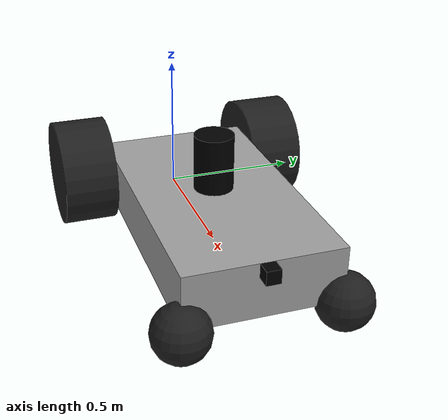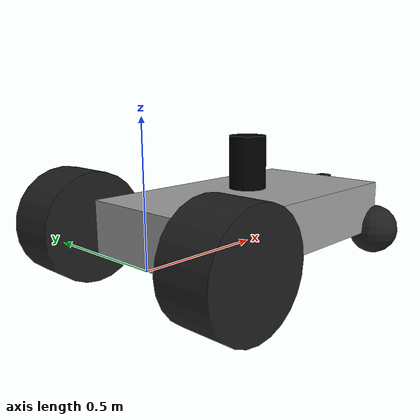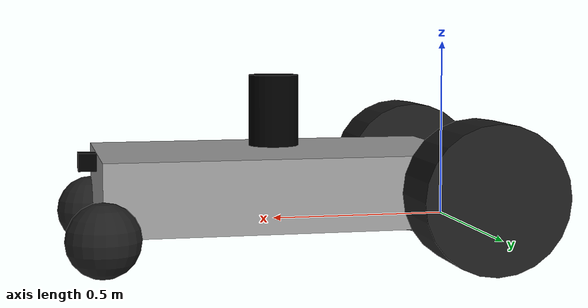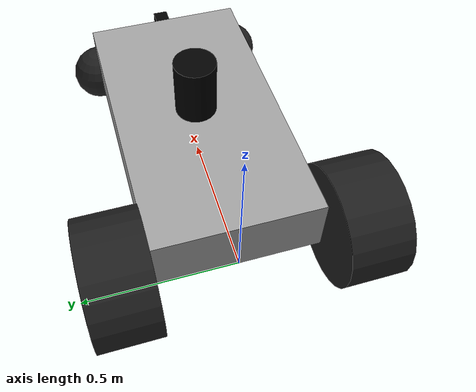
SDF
<sdf version='1.11'>
  <model name='robobase'>
    <link name='base_footprint'>
      <inertial>
        <pose>0.50017641129032253 0 0.1004620295698925 0 0 0</pose>
        <mass>297.60000000000008</mass>
        <inertia>
          <ixx>8.5122739709341424</ixx>
          <ixy>0</ixy>
          <ixz>-0.0039132434475792621</ixz>
          <iyy>25.802952209341399</iyy>
          <iyz>0</iyz>
          <izz>32.265528238407263</izz>
        </inertia>
      </inertial>
      <collision name='base_footprint_fixed_joint_lump__base_link_collision'>
        <pose>0.5 0 0.10000000000000001 0 0 0</pose>
        <geometry>
          <box>
            <size>1 0.55000000000000004 0.20000000000000001</size>
          </box>
        </geometry>
      </collision>
      <collision name='base_footprint_fixed_joint_lump__camera_link_collision_1'>
        <pose>1.0249999999999999 0 0.17499999999999999 0 0 0</pose>
        <geometry>
          <box>
            <size>0.050000000000000003 0.050000000000000003 0.050000000000000003</size>
          </box>
        </geometry>
        <surface>
          <contact>
            <ode/>
          </contact>
          <friction>
            <ode/>
          </friction>
        </surface>
      </collision>
      <collision name='base_footprint_fixed_joint_lump__lidar_link_collision_2'>
        <pose>0.5 0 0.31000000000000011 0 0 0</pose>
        <geometry>
          <cylinder>
            <length>0.20000000000000001</length>
            <radius>0.070000000000000007</radius>
          </cylinder>
        </geometry>
        <surface>
          <contact>
            <ode/>
          </contact>
          <friction>
            <ode/>
          </friction>
        </surface>
      </collision>
      <visual name='base_footprint_fixed_joint_lump__base_link_visual'>
        <pose>0.5 0 0.10000000000000001 0 0 0</pose>
        <geometry>
          <box>
            <size>1 0.55000000000000004 0.20000000000000001</size>
          </box>
        </geometry>
        <material>
          <diffuse>0.625 0.625 0.625 1</diffuse>
          <ambient>0.625 0.625 0.625 1</ambient>
        </material>
      </visual>
      <visual name='base_footprint_fixed_joint_lump__camera_link_visual_1'>
        <pose>1.0249999999999999 0 0.17499999999999999 0 0 0</pose>
        <geometry>
          <box>
            <size>0.050000000000000003 0.050000000000000003 0.050000000000000003</size>
          </box>
        </geometry>
        <material>
          <diffuse>0 0 0 1</diffuse>
          <ambient>0 0 0 1</ambient>
        </material>
      </visual>
      <visual name='base_footprint_fixed_joint_lump__lidar_link_visual_2'>
        <pose>0.5 0 0.31000000000000011 0 0 0</pose>
        <geometry>
          <cylinder>
            <length>0.20000000000000001</length>
            <radius>0.070000000000000007</radius>
          </cylinder>
        </geometry>
        <material>
          <diffuse>0 0 0 1</diffuse>
          <ambient>0 0 0 1</ambient>
        </material>
      </visual>
      <sensor name='camera_sensor' type='camera'>
        <camera>
          <horizontal_fov>1.0469999999999999</horizontal_fov>
          <image>
            <width>640</width>
            <height>480</height>
            <format>R8G8B8</format>
          </image>
          <clip>
            <near>0.10000000000000001</near>
            <far>100</far>
          </clip>
          <camera_info_topic>camera/camera_info</camera_info_topic>
        </camera>
        <always_on>true</always_on>
        <update_rate>30</update_rate>
        <visualize>true</visualize>
        <topic>camera/image_raw</topic>
        <pose>1.0249999999999999 0 0.17499999999999999 0 0 0</pose>
        <gz_frame_id>camera_link</gz_frame_id>
      </sensor>
      <sensor name='imu_sensor' type='imu'>
        <always_on>true</always_on>
        <update_rate>200</update_rate>
        <topic>imu</topic>
        <imu>
          <angular_velocity>
            <x>
              <noise type='gaussian'>
                <mean>0</mean>
                <stddev>0.00020000000000000001</stddev>
              </noise>
            </x>
            <y>
              <noise type='gaussian'>
                <mean>0</mean>
                <stddev>0.00020000000000000001</stddev>
              </noise>
            </y>
            <z>
              <noise type='gaussian'>
                <mean>0</mean>
                <stddev>0.00020000000000000001</stddev>
              </noise>
            </z>
          </angular_velocity>
          <linear_acceleration>
            <x>
              <noise type='gaussian'>
                <mean>0</mean>
                <stddev>0.017000000000000001</stddev>
              </noise>
            </x>
            <y>
              <noise type='gaussian'>
                <mean>0</mean>
                <stddev>0.017000000000000001</stddev>
              </noise>
            </y>
            <z>
              <noise type='gaussian'>
                <mean>0</mean>
                <stddev>0.017000000000000001</stddev>
              </noise>
            </z>
          </linear_acceleration>
        </imu>
        <pose>0.5 0 0 0 0 0</pose>
      </sensor>
      <sensor name='lidar_sensor' type='gpu_lidar'>
        <always_on>true</always_on>
        <visualize>true</visualize>
        <update_rate>10</update_rate>
        <topic>scan</topic>
        <lidar>
          <scan>
            <horizontal>
              <samples>360</samples>
              <resolution>1</resolution>
              <min_angle>0</min_angle>
              <max_angle>6.2800000000000002</max_angle>
            </horizontal>
          </scan>
          <range>
            <min>0.10000000000000001</min>
            <max>8</max>
            <resolution>0.014999999999999999</resolution>
          </range>
          <noise>
            <type>gaussian</type>
            <mean>0</mean>
            <stddev>0.01</stddev>
          </noise>
        </lidar>
        <pose>0.5 0 0.31 0 0 0</pose>
        <gz_frame_id>lidar_link</gz_frame_id>
      </sensor>
    </link>
    <joint name='lbwheel_joint' type='revolute'>
      <pose relative_to='base_footprint'>0 0.27500000000000002 0.10000000000000001 -1.5707963267948959 0 0</pose>
      <parent>base_footprint</parent>
      <child>lbwheel_link</child>
      <axis>
        <xyz>0 0 1</xyz>
        <limit>
          <effort>1000</effort>
          <velocity>1000</velocity>
          <lower>-inf</lower>
          <upper>inf</upper>
        </limit>
        <dynamics>
          <damping>1</damping>
          <friction>1</friction>
          <spring_reference>0</spring_reference>
          <spring_stiffness>0</spring_stiffness>
        </dynamics>
      </axis>
    </joint>
    <link name='lbwheel_link'>
      <pose relative_to='lbwheel_joint'>0 0 0 0 0 0</pose>
      <inertial>
        <pose>0 0 0.10000000000000001 0 0 0</pose>
        <mass>67.858401317539546</mass>
        <inertia>
          <ixx>0.90477868423386076</ixx>
          <ixy>0</ixy>
          <ixz>0</ixz>
          <iyy>0.90477868423386076</iyy>
          <iyz>0</iyz>
          <izz>1.357168026350791</izz>
        </inertia>
      </inertial>
      <collision name='lbwheel_link_collision'>
        <pose>0 0 0.10000000000000001 0 0 0</pose>
        <geometry>
          <cylinder>
            <length>0.20000000000000001</length>
            <radius>0.20000000000000001</radius>
          </cylinder>
        </geometry>
        <surface>
          <contact>
            <ode/>
          </contact>
          <friction>
            <ode>
              <mu>3</mu>
              <mu2>3</mu2>
            </ode>
          </friction>
        </surface>
      </collision>
      <visual name='lbwheel_link_visual'>
        <pose>0 0 0.10000000000000001 0 0 0</pose>
        <geometry>
          <cylinder>
            <length>0.20000000000000001</length>
            <radius>0.20000000000000001</radius>
          </cylinder>
        </geometry>
        <material>
          <script>
            <name>Gazebo/Black</name>
            <uri>file://media/materials/scripts/gazebo.material</uri>
          </script>
          <diffuse>0 0 0 1</diffuse>
          <ambient>0 0 0 1</ambient>
        </material>
      </visual>
    </link>
    <joint name='lfwheel_joint' type='revolute'>
      <pose relative_to='base_footprint'>1 0.27500000000000002 0 0 0 0</pose>
      <parent>base_footprint</parent>
      <child>lfwheel_link</child>
      <axis>
        <xyz>1 0 0</xyz>
        <limit>
          <lower>-inf</lower>
          <upper>inf</upper>
        </limit>
        <dynamics>
          <spring_reference>0</spring_reference>
          <spring_stiffness>0</spring_stiffness>
        </dynamics>
      </axis>
    </joint>
    <link name='lfwheel_link'>
      <pose relative_to='lfwheel_joint'>0 0 0 0 0 0</pose>
      <inertial>
        <pose>0 0 0 0 0 0</pose>
        <mass>11.309733552923261</mass>
        <inertia>
          <ixx>0.045238934211693033</ixx>
          <ixy>0</ixy>
          <ixz>0</ixz>
          <iyy>0.045238934211693033</iyy>
          <iyz>0</iyz>
          <izz>0.045238934211693033</izz>
        </inertia>
      </inertial>
      <collision name='lfwheel_link_collision'>
        <pose>0 0 0 0 0 0</pose>
        <geometry>
          <sphere>
            <radius>0.10000000000000001</radius>
          </sphere>
        </geometry>
        <surface>
          <contact>
            <ode/>
          </contact>
          <friction>
            <ode>
              <mu>0</mu>
              <mu2>0</mu2>
            </ode>
          </friction>
        </surface>
      </collision>
      <visual name='lfwheel_link_visual'>
        <pose>0 0 0 0 0 0</pose>
        <geometry>
          <sphere>
            <radius>0.10000000000000001</radius>
          </sphere>
        </geometry>
        <material>
          <script>
            <name>Gazebo/Black</name>
            <uri>file://media/materials/scripts/gazebo.material</uri>
          </script>
          <diffuse>0 0 0 1</diffuse>
          <ambient>0 0 0 1</ambient>
        </material>
      </visual>
    </link>
    <joint name='rbwheel_joint' type='revolute'>
      <pose relative_to='base_footprint'>0 -0.27500000000000002 0.10000000000000001 1.5707963267948959 0 0</pose>
      <parent>base_footprint</parent>
      <child>rbwheel_link</child>
      <axis>
        <xyz>0 0 -1</xyz>
        <limit>
          <effort>1000</effort>
          <velocity>1000</velocity>
          <lower>-inf</lower>
          <upper>inf</upper>
        </limit>
        <dynamics>
          <damping>1</damping>
          <friction>1</friction>
          <spring_reference>0</spring_reference>
          <spring_stiffness>0</spring_stiffness>
        </dynamics>
      </axis>
    </joint>
    <link name='rbwheel_link'>
      <pose relative_to='rbwheel_joint'>0 0 0 0 0 0</pose>
      <inertial>
        <pose>0 0 0.10000000000000001 0 0 0</pose>
        <mass>67.858401317539546</mass>
        <inertia>
          <ixx>0.90477868423386076</ixx>
          <ixy>0</ixy>
          <ixz>0</ixz>
          <iyy>0.90477868423386076</iyy>
          <iyz>0</iyz>
          <izz>1.357168026350791</izz>
        </inertia>
      </inertial>
      <collision name='rbwheel_link_collision'>
        <pose>0 0 0.10000000000000001 0 0 0</pose>
        <geometry>
          <cylinder>
            <length>0.20000000000000001</length>
            <radius>0.20000000000000001</radius>
          </cylinder>
        </geometry>
        <surface>
          <contact>
            <ode/>
          </contact>
          <friction>
            <ode>
              <mu>3</mu>
              <mu2>3</mu2>
            </ode>
          </friction>
        </surface>
      </collision>
      <visual name='rbwheel_link_visual'>
        <pose>0 0 0.10000000000000001 0 0 0</pose>
        <geometry>
          <cylinder>
            <length>0.20000000000000001</length>
            <radius>0.20000000000000001</radius>
          </cylinder>
        </geometry>
        <material>
          <script>
            <name>Gazebo/Black</name>
            <uri>file://media/materials/scripts/gazebo.material</uri>
          </script>
          <diffuse>0 0 0 1</diffuse>
          <ambient>0 0 0 1</ambient>
        </material>
      </visual>
    </link>
    <joint name='rfwheel_joint' type='revolute'>
      <pose relative_to='base_footprint'>1 -0.27500000000000002 0 0 0 0</pose>
      <parent>base_footprint</parent>
      <child>rfwheel_link</child>
      <axis>
        <xyz>1 0 0</xyz>
        <limit>
          <lower>-inf</lower>
          <upper>inf</upper>
        </limit>
        <dynamics>
          <spring_reference>0</spring_reference>
          <spring_stiffness>0</spring_stiffness>
        </dynamics>
      </axis>
    </joint>
    <link name='rfwheel_link'>
      <pose relative_to='rfwheel_joint'>0 0 0 0 0 0</pose>
      <inertial>
        <pose>0 0 0 0 0 0</pose>
        <mass>11.309733552923261</mass>
        <inertia>
          <ixx>0.045238934211693033</ixx>
          <ixy>0</ixy>
          <ixz>0</ixz>
          <iyy>0.045238934211693033</iyy>
          <iyz>0</iyz>
          <izz>0.045238934211693033</izz>
        </inertia>
      </inertial>
      <collision name='rfwheel_link_collision'>
        <pose>0 0 0 0 0 0</pose>
        <geometry>
          <sphere>
            <radius>0.10000000000000001</radius>
          </sphere>
        </geometry>
        <surface>
          <contact>
            <ode/>
          </contact>
          <friction>
            <ode>
              <mu>0</mu>
              <mu2>0</mu2>
            </ode>
          </friction>
        </surface>
      </collision>
      <visual name='rfwheel_link_visual'>
        <pose>0 0 0 0 0 0</pose>
        <geometry>
          <sphere>
            <radius>0.10000000000000001</radius>
          </sphere>
        </geometry>
        <material>
          <script>
            <name>Gazebo/Black</name>
            <uri>file://media/materials/scripts/gazebo.material</uri>
          </script>
          <diffuse>0 0 0 1</diffuse>
          <ambient>0 0 0 1</ambient>
        </material>
      </visual>
    </link>
    <plugin name='gz_ros2_control::GazeboSimROS2ControlPlugin' filename='libgz_ros2_control-system.so'>
      <parameters>/root/robows/src/robobase/mobilerobo/config/controllers.yaml</parameters>
    </plugin>
    <plugin name='gz::sim::systems::Sensors' filename='gz-sim-sensors-system'>
      <render_engine>ogre2</render_engine>
    </plugin>
    <frame name='camera_joint' attached_to='base_link'>
      <pose>0.52500000000000002 0 0.17499999999999999 0 0 0</pose>
    </frame>
    <frame name='camera_link' attached_to='camera_joint'>
      <pose>0 0 0 0 0 0</pose>
    </frame>
    <frame name='imu_joint' attached_to='base_link'>
      <pose>0 0 0 0 0 0</pose>
    </frame>
    <frame name='imu_link' attached_to='imu_joint'>
      <pose>0 0 0 0 0 0</pose>
    </frame>
    <frame name='lidar_joint' attached_to='base_link'>
      <pose>0 0 0.31000000000000011 0 0 0</pose>
    </frame>
    <frame name='lidar_link' attached_to='lidar_joint'>
      <pose>0 0 0 0 0 0</pose>
    </frame>
    <frame name='base_joint' attached_to='base_footprint'>
      <pose>0.5 0 0 0 0 0</pose>
    </frame>
    <frame name='base_link' attached_to='base_joint'>
      <pose>0 0 0 0 0 0</pose>
    </frame>
  </model>
</sdf>
